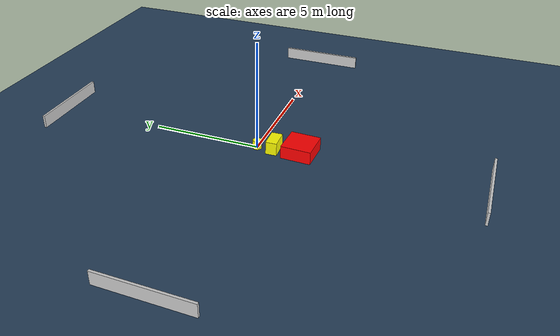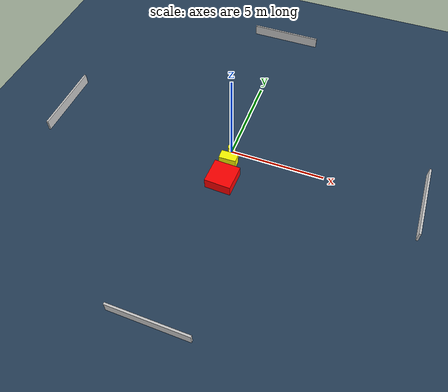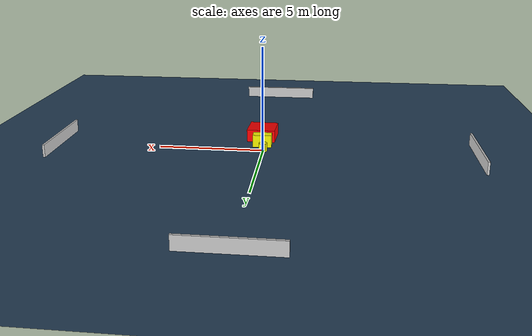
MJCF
<?xml version="1.0" ?>
<mujoco model="generated_environment">
  <option timestep="0.01" integrator="RK4" cone="elliptic"/>
  <default>
    <geom density="1"/>
  </default>
  <asset>
    <texture builtin="gradient" height="3072" name="skybox" rgb1="0.3 0.5 0.7" rgb2="0 0 0" type="skybox" width="512"/>
    <texture builtin="checker" height="300" name="groundplane" rgb1="0.2 0.3 0.4" rgb2="0.1 0.2 0.3" type="2d" width="300"/>
    <material name="groundplane" reflectance="0.2" texrepeat="5 5" texture="groundplane"/>
  </asset>
  <worldbody>
    <light dir="0 0 -1" directional="true" pos="0 0 1.5"/>
    <geom condim="3" friction="0.5 0.005 0.001" material="groundplane" name="floor" pos="0 0 0" size="0 0 0.05" type="plane"/>
    <body name="walls">
      <geom name="wall_1" condim="4" pos="-10.0 0.0 0.3" rgba="0.800000011920929 0.800000011920929 0.800000011920929 1.0" size="0.05 2.0 0.3" type="box"/>
      <geom name="wall_2" condim="4" pos="10.0 0.0 0.3" rgba="0.800000011920929 0.800000011920929 0.800000011920929 1.0" size="0.05 2.0 0.3" type="box"/>
      <geom name="wall_3" condim="4" pos="0.0 -10.0 0.3" rgba="0.800000011920929 0.800000011920929 0.800000011920929 1.0" size="2.0 0.05 0.3" type="box"/>
      <geom name="wall_4" condim="4" pos="0.0 10.0 0.3" rgba="0.800000011920929 0.800000011920929 0.800000011920929 1.0" size="2.0 0.05 0.3" type="box"/>
    </body>
    <body name="robot">
      <joint name="joint_x" type="slide" pos="0 0 0" axis="1 0 0"/>
      <joint name="joint_y" type="slide" pos="0 0 0" axis="0 1 0"/>
      <geom name="robot" type="cylinder" pos="0.0 0.0 0.2" size="0.2 0.2 0.0" mass="5.0" friction="1.0 0.005 0.0001" condim="4" rgba="1.0 1.0 0.0 1.0"/>
    </body>
    <body name="obstacle_1_movable">
      <geom name="obstacle_1_movable" condim="4" pos="0.11189528468934508 -0.7612207767486907 0.3" euler="0 0 181.95519584724843" friction="0.0 0.005 0.001" rgba="1.0 1.0 0.0 1.0" size="0.45400744485990985 0.2530737727056412 0.3" type="box" mass="0.1"/>
      <joint type="free"/>
    </body>
    <body name="obstacle_2_static">
      <geom name="obstacle_2_static" condim="4" pos="0.2308870670609924 -1.9606380740692422 0.3" euler="0 0 87.93768212628473" friction="0.0 0.005 0.001" rgba="1.0 0.0 0.0 1.0" size="0.6856692130391472 0.691410137635925 0.3" type="box"/>
    </body>
  </worldbody>
  <actuator>
    <motor name="actuator_x" joint="joint_x" gear="1" ctrlrange="-1 1"/>
    <motor name="actuator_y" joint="joint_y" gear="1" ctrlrange="-1 1"/>
  </actuator>
</mujoco>
